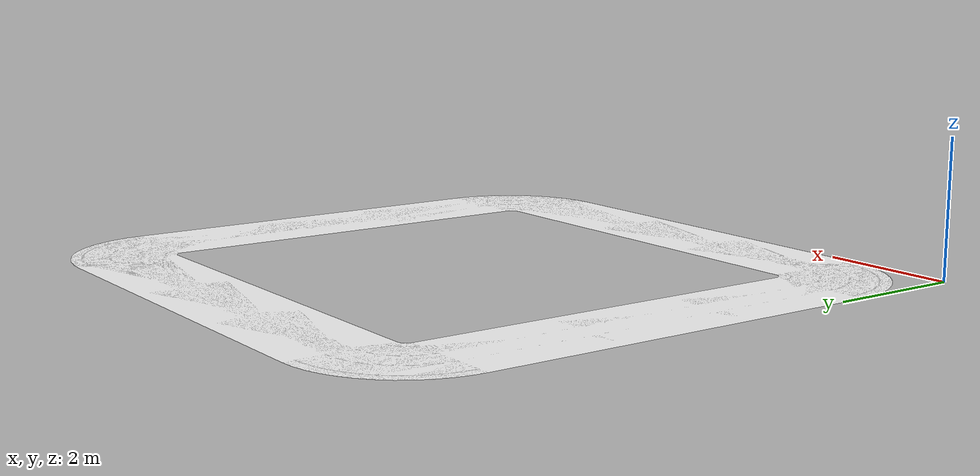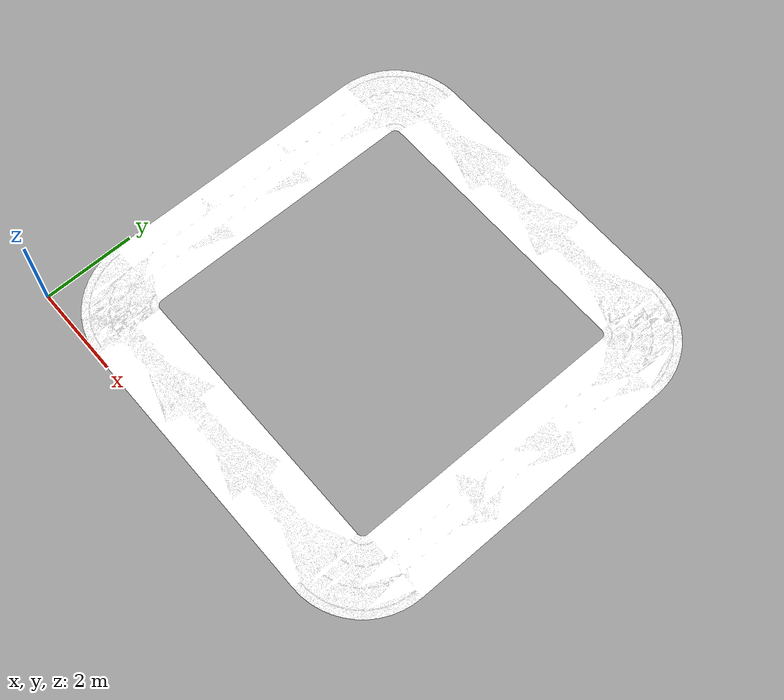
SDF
<?xml version="1.0" ?>
<sdf version="1.4">
  <model name="asphalt_plane">
    <static>true</static>
    <link name="link">
      <collision name='collision'>
          <geometry>
            <plane>
              <normal>0 0 1</normal>
              <size>10 20</size>
            </plane>
          </geometry>
          <surface>
            <friction>
              <ode>
                <mu>100</mu>
                <mu2>50</mu2>
              </ode>
            </friction>
            <bounce/>
            <contact>
              <ode/>
            </contact>
          </surface>
        </collision>
      <visual name="visual">
        <geometry>
          <mesh>
	         <uri>model://pista_tripe_sc_blender/tripe_sc_blender.dae</uri>
         </mesh>
        </geometry>
      </visual>
      <velocity_decay>
          <linear>0</linear>
          <angular>0</angular>
      </velocity_decay>
      <self_collide>0</self_collide>
      <kinematic>0</kinematic>
      <gravity>1</gravity>
    </link>
  </model>
</sdf>
